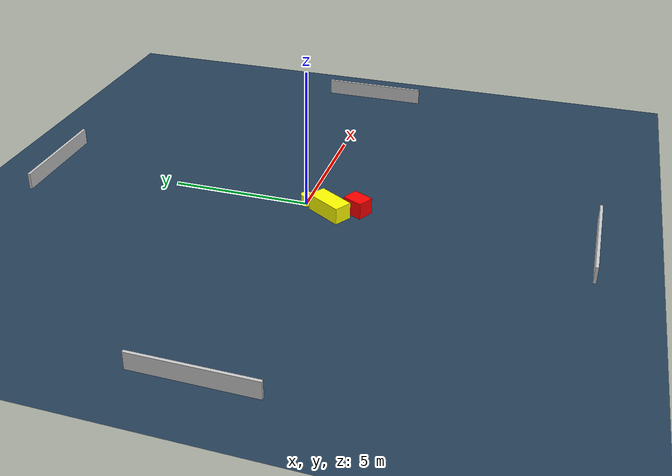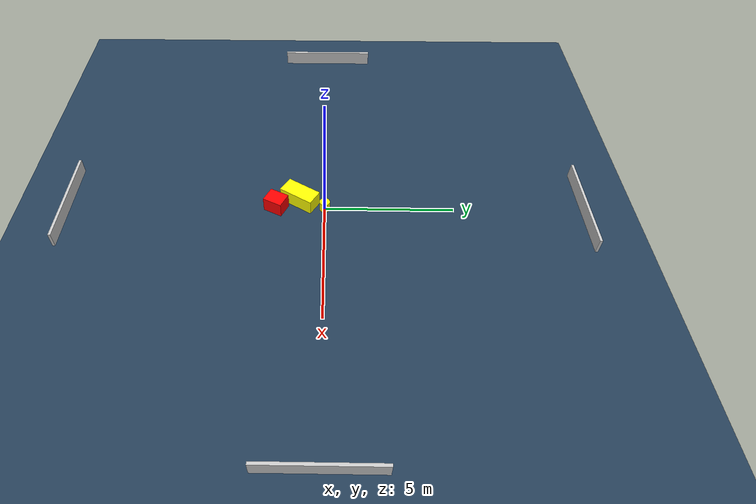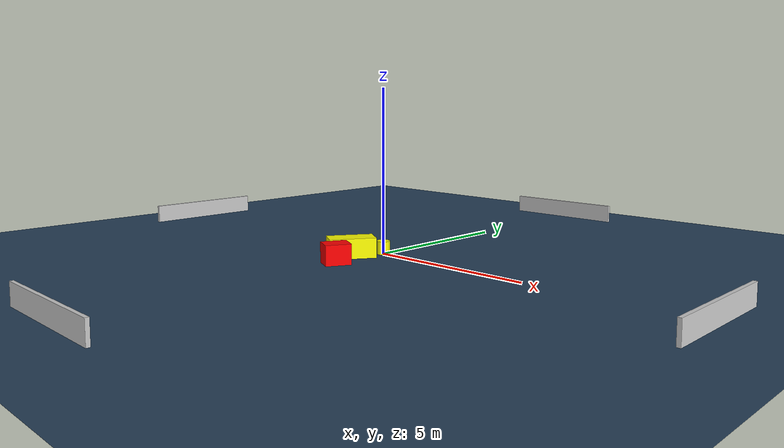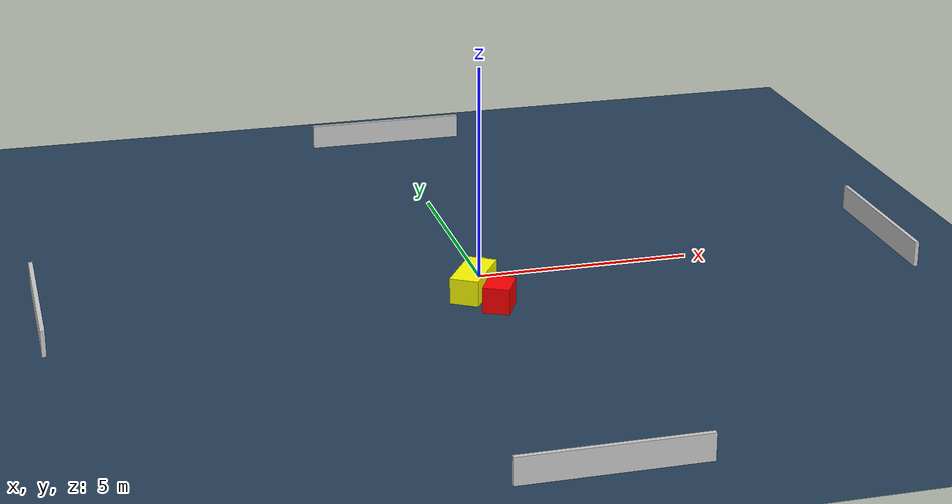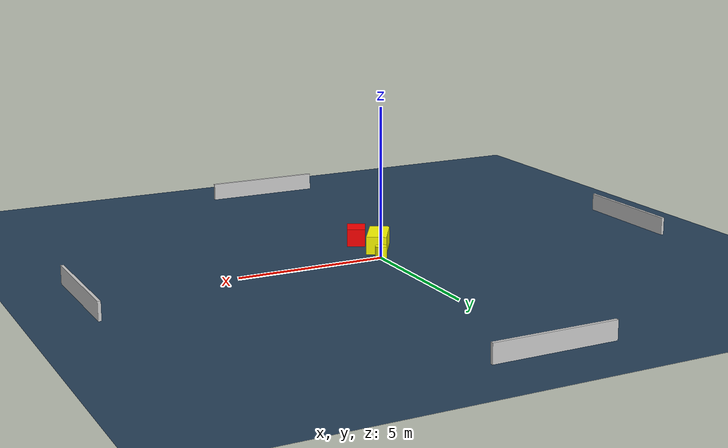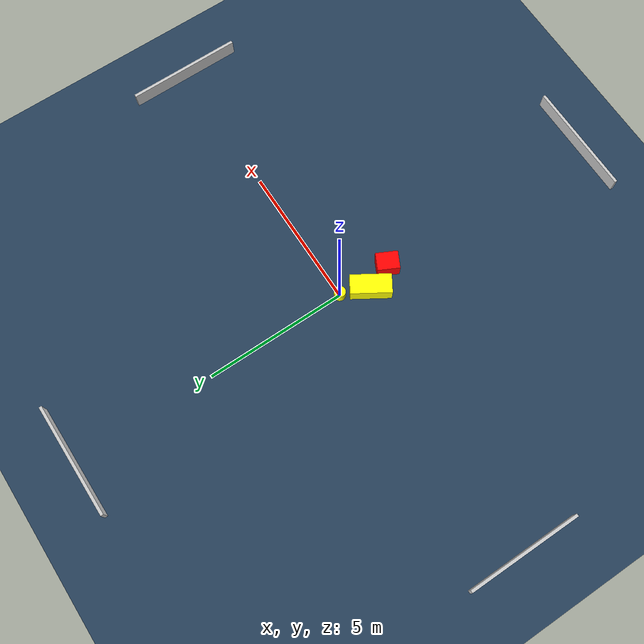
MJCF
<?xml version="1.0" ?>
<mujoco model="generated_environment">
  <option timestep="0.01" integrator="RK4" cone="elliptic"/>
  <default>
    <geom density="1"/>
  </default>
  <asset>
    <texture builtin="gradient" height="3072" name="skybox" rgb1="0.3 0.5 0.7" rgb2="0 0 0" type="skybox" width="512"/>
    <texture builtin="checker" height="300" name="groundplane" rgb1="0.2 0.3 0.4" rgb2="0.1 0.2 0.3" type="2d" width="300"/>
    <material name="groundplane" reflectance="0.2" texrepeat="5 5" texture="groundplane"/>
  </asset>
  <worldbody>
    <light dir="0 0 -1" directional="true" pos="0 0 1.5"/>
    <geom condim="3" friction="0.5 0.005 0.001" material="groundplane" name="floor" pos="0 0 0" size="0 0 0.05" type="plane"/>
    <body name="walls">
      <geom name="wall_1" condim="4" pos="-10.0 0.0 0.3" rgba="0.800000011920929 0.800000011920929 0.800000011920929 1.0" size="0.05 2.0 0.3" type="box"/>
      <geom name="wall_2" condim="4" pos="10.0 0.0 0.3" rgba="0.800000011920929 0.800000011920929 0.800000011920929 1.0" size="0.05 2.0 0.3" type="box"/>
      <geom name="wall_3" condim="4" pos="0.0 -10.0 0.3" rgba="0.800000011920929 0.800000011920929 0.800000011920929 1.0" size="2.0 0.05 0.3" type="box"/>
      <geom name="wall_4" condim="4" pos="0.0 10.0 0.3" rgba="0.800000011920929 0.800000011920929 0.800000011920929 1.0" size="2.0 0.05 0.3" type="box"/>
    </body>
    <body name="robot">
      <joint name="joint_x" type="slide" pos="0 0 0" axis="1 0 0"/>
      <joint name="joint_y" type="slide" pos="0 0 0" axis="0 1 0"/>
      <geom name="robot" type="cylinder" pos="0.0 0.0 0.2" size="0.2 0.2 0.0" mass="5.0" friction="1.0 0.005 0.0001" condim="4" rgba="1.0 1.0 0.0 1.0"/>
    </body>
    <body name="obstacle_1_movable">
      <geom name="obstacle_1_movable" condim="4" pos="-0.39175975795516793 -0.971173982689308 0.3" euler="0 0 148.0819715275058" friction="0.0 0.005 0.001" rgba="1.0 1.0 0.0 1.0" size="0.33444573760032437 0.7016284922971683 0.3" type="box" mass="0.1"/>
      <joint type="free"/>
    </body>
    <body name="obstacle_2_static">
      <geom name="obstacle_2_static" condim="4" pos="-0.033040149881189855 -1.8876591010566357 0.3" euler="0 0 63.13168427878275" friction="0.0 0.005 0.001" rgba="1.0 0.0 0.0 1.0" size="0.3832880481291187 0.30694131155990945 0.3" type="box"/>
    </body>
  </worldbody>
  <actuator>
    <motor name="actuator_x" joint="joint_x" gear="1" ctrlrange="-1 1"/>
    <motor name="actuator_y" joint="joint_y" gear="1" ctrlrange="-1 1"/>
  </actuator>
</mujoco>
